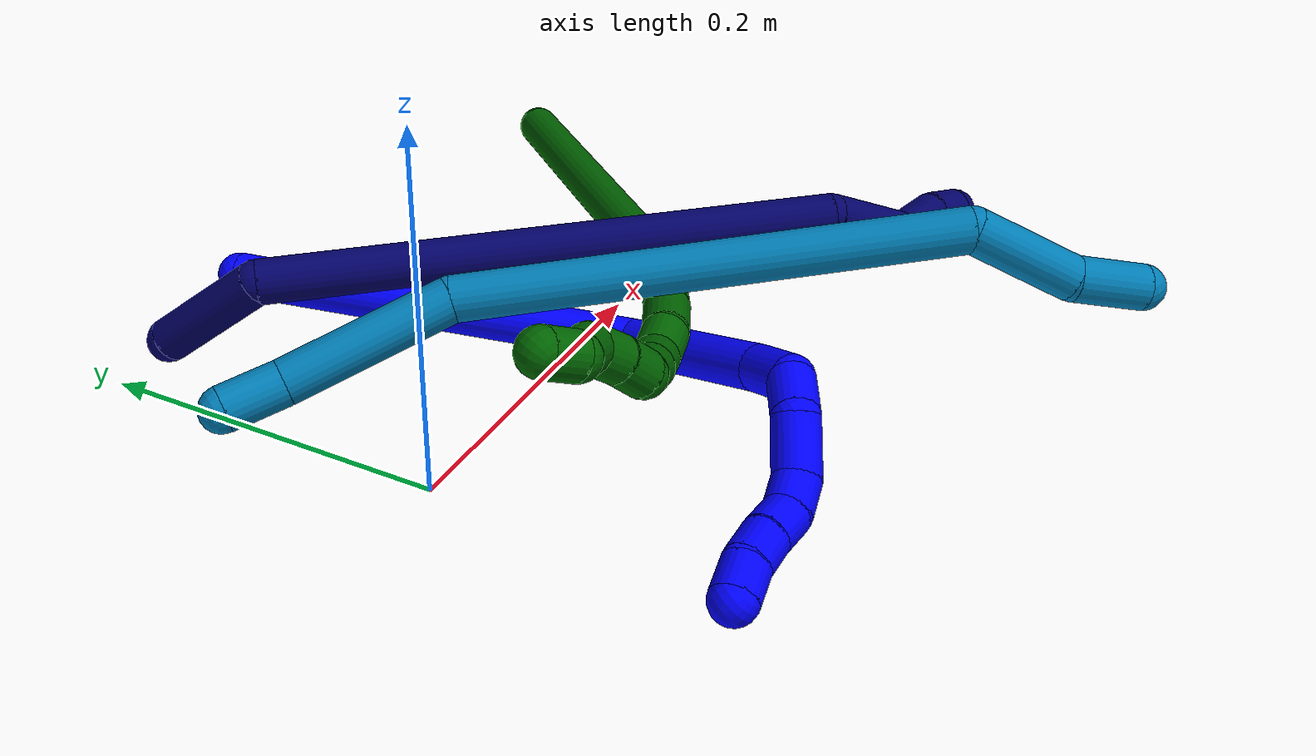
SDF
<sdf version="1.7">
 <world name="default">
  <model name="1">
   <static>0</static>
   <link name="1">
    <collision name="collision-cylinder-e_1_1_4">
     <pose>-0.005536 -0.092034 0.071286 0.91176 -0.047517 -0.023302</pose>
     <geometry><cylinder><radius>0.0125</radius><length>0.233088</length></cylinder></geometry>
     <surface>
      <friction><ode><mu>1.16</mu><mu2>1.16</mu2><slip1>0</slip1><slip2>0</slip2></ode></friction>
      <contact><ode><kp>1e+06</kp><kd>1</kd><max_vel>0</max_vel><min_depth>0.001</min_depth></ode></contact>
     </surface>
    </collision>
    <visual name="visual-cylinder-e_1_1_4">
     <pose>-0.005536 -0.092034 0.071286 0.91176 -0.047517 -0.023302</pose>
     <geometry><cylinder><radius>0.0125</radius><length>0.233088</length></cylinder></geometry>
     <material><ambient>0 0 1 1</ambient></material>
    </visual>
    <collision name="collision-cylinder-e_2_4_5">
     <pose>-0.043779 -0.209725 0.16983 0.755148 -0.718108 -0.295538</pose>
     <geometry><cylinder><radius>0.0125</radius><length>0.099422</length></cylinder></geometry>
     <surface>
      <friction><ode><mu>1.16</mu><mu2>1.16</mu2><slip1>0</slip1><slip2>0</slip2></ode></friction>
      <contact><ode><kp>1e+06</kp><kd>1</kd><max_vel>0</max_vel><min_depth>0.001</min_depth></ode></contact>
     </surface>
    </collision>
    <visual name="visual-cylinder-e_2_4_5">
     <pose>-0.043779 -0.209725 0.16983 0.755148 -0.718108 -0.295538</pose>
     <geometry><cylinder><radius>0.0125</radius><length>0.099422</length></cylinder></geometry>
     <material><ambient>0 0 1 1</ambient></material>
    </visual>
    <collision name="collision-cylinder-e_3_5_6">
     <pose>-0.088891 -0.241461 0.203828 0.733916 -0.939164 -0.38525</pose>
     <geometry><cylinder><radius>0.0125</radius><length>0.030738</length></cylinder></geometry>
     <surface>
      <friction><ode><mu>1.16</mu><mu2>1.16</mu2><slip1>0</slip1><slip2>0</slip2></ode></friction>
      <contact><ode><kp>1e+06</kp><kd>1</kd><max_vel>0</max_vel><min_depth>0.001</min_depth></ode></contact>
     </surface>
    </collision>
    <visual name="visual-cylinder-e_3_5_6">
     <pose>-0.088891 -0.241461 0.203828 0.733916 -0.939164 -0.38525</pose>
     <geometry><cylinder><radius>0.0125</radius><length>0.030738</length></cylinder></geometry>
     <material><ambient>0 0 1 1</ambient></material>
    </visual>
    <collision name="collision-cylinder-e_4_6_7">
     <pose>-0.111715 -0.253522 0.207202 2.08302 -0.988316 -1.48858</pose>
     <geometry><cylinder><radius>0.0125</radius><length>0.024956</length></cylinder></geometry>
     <surface>
      <friction><ode><mu>1.16</mu><mu2>1.16</mu2><slip1>0</slip1><slip2>0</slip2></ode></friction>
      <contact><ode><kp>1e+06</kp><kd>1</kd><max_vel>0</max_vel><min_depth>0.001</min_depth></ode></contact>
     </surface>
    </collision>
    <visual name="visual-cylinder-e_4_6_7">
     <pose>-0.111715 -0.253522 0.207202 2.08302 -0.988316 -1.48858</pose>
     <geometry><cylinder><radius>0.0125</radius><length>0.024956</length></cylinder></geometry>
     <material><ambient>0 0 1 1</ambient></material>
    </visual>
    <collision name="collision-cylinder-e_5_7_8">
     <pose>-0.128836 -0.26995 0.194718 2.28855 -0.450184 -0.93349</pose>
     <geometry><cylinder><radius>0.0125</radius><length>0.0308</length></cylinder></geometry>
     <surface>
      <friction><ode><mu>1.16</mu><mu2>1.16</mu2><slip1>0</slip1><slip2>0</slip2></ode></friction>
      <contact><ode><kp>1e+06</kp><kd>1</kd><max_vel>0</max_vel><min_depth>0.001</min_depth></ode></contact>
     </surface>
    </collision>
    <visual name="visual-cylinder-e_5_7_8">
     <pose>-0.128836 -0.26995 0.194718 2.28855 -0.450184 -0.93349</pose>
     <geometry><cylinder><radius>0.0125</radius><length>0.0308</length></cylinder></geometry>
     <material><ambient>0 0 1 1</ambient></material>
    </visual>
    <collision name="collision-cylinder-e_6_8_9">
     <pose>-0.143305 -0.283576 0.179953 2.62856 -0.875485 -2.11997</pose>
     <geometry><cylinder><radius>0.0125</radius><length>0.020232</length></cylinder></geometry>
     <surface>
      <friction><ode><mu>1.16</mu><mu2>1.16</mu2><slip1>0</slip1><slip2>0</slip2></ode></friction>
      <contact><ode><kp>1e+06</kp><kd>1</kd><max_vel>0</max_vel><min_depth>0.001</min_depth></ode></contact>
     </surface>
    </collision>
    <visual name="visual-cylinder-e_6_8_9">
     <pose>-0.143305 -0.283576 0.179953 2.62856 -0.875485 -2.11997</pose>
     <geometry><cylinder><radius>0.0125</radius><length>0.020232</length></cylinder></geometry>
     <material><ambient>0 0 1 1</ambient></material>
    </visual>
    <collision name="collision-cylinder-e_7_9_10">
     <pose>-0.159803 -0.285874 0.169155 -2.97201 -1.03134 2.84391</pose>
     <geometry><cylinder><radius>0.0125</radius><length>0.020349</length></cylinder></geometry>
     <surface>
      <friction><ode><mu>1.16</mu><mu2>1.16</mu2><slip1>0</slip1><slip2>0</slip2></ode></friction>
      <contact><ode><kp>1e+06</kp><kd>1</kd><max_vel>0</max_vel><min_depth>0.001</min_depth></ode></contact>
     </surface>
    </collision>
    <visual name="visual-cylinder-e_7_9_10">
     <pose>-0.159803 -0.285874 0.169155 -2.97201 -1.03134 2.84391</pose>
     <geometry><cylinder><radius>0.0125</radius><length>0.020349</length></cylinder></geometry>
     <material><ambient>0 0 1 1</ambient></material>
    </visual>
    <collision name="collision-cylinder-e_8_10_11">
     <pose>-0.177141 -0.285196 0.158676 3.10343 -1.01632 -3.0731</pose>
     <geometry><cylinder><radius>0.0125</radius><length>0.020252</length></cylinder></geometry>
     <surface>
      <friction><ode><mu>1.16</mu><mu2>1.16</mu2><slip1>0</slip1><slip2>0</slip2></ode></friction>
      <contact><ode><kp>1e+06</kp><kd>1</kd><max_vel>0</max_vel><min_depth>0.001</min_depth></ode></contact>
     </surface>
    </collision>
    <visual name="visual-cylinder-e_8_10_11">
     <pose>-0.177141 -0.285196 0.158676 3.10343 -1.01632 -3.0731</pose>
     <geometry><cylinder><radius>0.0125</radius><length>0.020252</length></cylinder></geometry>
     <material><ambient>0 0 1 1</ambient></material>
    </visual>
    <collision name="collision-cylinder-e_9_11_2">
     <pose>-0.193774 -0.287934 0.147797 2.71328 -0.920543 -2.31479</pose>
     <geometry><cylinder><radius>0.0125</radius><length>0.020163</length></cylinder></geometry>
     <surface>
      <friction><ode><mu>1.16</mu><mu2>1.16</mu2><slip1>0</slip1><slip2>0</slip2></ode></friction>
      <contact><ode><kp>1e+06</kp><kd>1</kd><max_vel>0</max_vel><min_depth>0.001</min_depth></ode></contact>
     </surface>
    </collision>
    <visual name="visual-cylinder-e_9_11_2">
     <pose>-0.193774 -0.287934 0.147797 2.71328 -0.920543 -2.31479</pose>
     <geometry><cylinder><radius>0.0125</radius><length>0.020163</length></cylinder></geometry>
     <material><ambient>0 0 1 1</ambient></material>
    </visual>
    <collision name="collision-sphere-2">
     <pose>-0.201799 -0.290469 0.142245 0 -0 0</pose>
     <geometry><sphere><radius>0.0125</radius></sphere></geometry>
     <surface>
      <friction><ode><mu>1.16</mu><mu2>1.16</mu2><slip1>0</slip1><slip2>0</slip2></ode></friction>
      <contact><ode><kp>1e+06</kp><kd>1</kd><max_vel>0</max_vel><min_depth>0.001</min_depth></ode></contact>
     </surface>
    </collision>
    <visual name="visual-sphere-2">
     <pose>-0.201799 -0.290469 0.142245 0 -0 0</pose>
     <geometry><sphere><radius>0.0125</radius></sphere></geometry>
     <material><ambient>0 0 1 1</ambient></material>
    </visual>
    <collision name="collision-sphere-11">
     <pose>-0.18575 -0.285399 0.153349 0 -0 0</pose>
     <geometry><sphere><radius>0.0125</radius></sphere></geometry>
     <surface>
      <friction><ode><mu>1.16</mu><mu2>1.16</mu2><slip1>0</slip1><slip2>0</slip2></ode></friction>
      <contact><ode><kp>1e+06</kp><kd>1</kd><max_vel>0</max_vel><min_depth>0.001</min_depth></ode></contact>
     </surface>
    </collision>
    <visual name="visual-sphere-11">
     <pose>-0.18575 -0.285399 0.153349 0 -0 0</pose>
     <geometry><sphere><radius>0.0125</radius></sphere></geometry>
     <material><ambient>0 0 1 1</ambient></material>
    </visual>
    <collision name="collision-sphere-10">
     <pose>-0.168532 -0.284992 0.164004 0 -0 0</pose>
     <geometry><sphere><radius>0.0125</radius></sphere></geometry>
     <surface>
      <friction><ode><mu>1.16</mu><mu2>1.16</mu2><slip1>0</slip1><slip2>0</slip2></ode></friction>
      <contact><ode><kp>1e+06</kp><kd>1</kd><max_vel>0</max_vel><min_depth>0.001</min_depth></ode></contact>
     </surface>
    </collision>
    <visual name="visual-sphere-10">
     <pose>-0.168532 -0.284992 0.164004 0 -0 0</pose>
     <geometry><sphere><radius>0.0125</radius></sphere></geometry>
     <material><ambient>0 0 1 1</ambient></material>
    </visual>
    <collision name="collision-sphere-9">
     <pose>-0.151073 -0.286757 0.174306 0 -0 0</pose>
     <geometry><sphere><radius>0.0125</radius></sphere></geometry>
     <surface>
      <friction><ode><mu>1.16</mu><mu2>1.16</mu2><slip1>0</slip1><slip2>0</slip2></ode></friction>
      <contact><ode><kp>1e+06</kp><kd>1</kd><max_vel>0</max_vel><min_depth>0.001</min_depth></ode></contact>
     </surface>
    </collision>
    <visual name="visual-sphere-9">
     <pose>-0.151073 -0.286757 0.174306 0 -0 0</pose>
     <geometry><sphere><radius>0.0125</radius></sphere></geometry>
     <material><ambient>0 0 1 1</ambient></material>
    </visual>
    <collision name="collision-sphere-4">
     <pose>-0.011071 -0.184067 0.142571 0 -0 0</pose>
     <geometry><sphere><radius>0.0125</radius></sphere></geometry>
     <surface>
      <friction><ode><mu>1.16</mu><mu2>1.16</mu2><slip1>0</slip1><slip2>0</slip2></ode></friction>
      <contact><ode><kp>1e+06</kp><kd>1</kd><max_vel>0</max_vel><min_depth>0.001</min_depth></ode></contact>
     </surface>
    </collision>
    <visual name="visual-sphere-4">
     <pose>-0.011071 -0.184067 0.142571 0 -0 0</pose>
     <geometry><sphere><radius>0.0125</radius></sphere></geometry>
     <material><ambient>0 0 1 1</ambient></material>
    </visual>
    <collision name="collision-sphere-1">
     <geometry><sphere><radius>0.0125</radius></sphere></geometry>
     <surface>
      <friction><ode><mu>1.16</mu><mu2>1.16</mu2><slip1>0</slip1><slip2>0</slip2></ode></friction>
      <contact><ode><kp>1e+06</kp><kd>1</kd><max_vel>0</max_vel><min_depth>0.001</min_depth></ode></contact>
     </surface>
    </collision>
    <visual name="visual-sphere-1">
     <geometry><sphere><radius>0.0125</radius></sphere></geometry>
     <material><ambient>0 0 1 1</ambient></material>
    </visual>
    <collision name="collision-sphere-8">
     <pose>-0.135538 -0.280395 0.185599 0 -0 0</pose>
     <geometry><sphere><radius>0.0125</radius></sphere></geometry>
     <surface>
      <friction><ode><mu>1.16</mu><mu2>1.16</mu2><slip1>0</slip1><slip2>0</slip2></ode></friction>
      <contact><ode><kp>1e+06</kp><kd>1</kd><max_vel>0</max_vel><min_depth>0.001</min_depth></ode></contact>
     </surface>
    </collision>
    <visual name="visual-sphere-8">
     <pose>-0.135538 -0.280395 0.185599 0 -0 0</pose>
     <geometry><sphere><radius>0.0125</radius></sphere></geometry>
     <material><ambient>0 0 1 1</ambient></material>
    </visual>
    <collision name="collision-sphere-5">
     <pose>-0.076487 -0.235382 0.197089 0 -0 0</pose>
     <geometry><sphere><radius>0.0125</radius></sphere></geometry>
     <surface>
      <friction><ode><mu>1.16</mu><mu2>1.16</mu2><slip1>0</slip1><slip2>0</slip2></ode></friction>
      <contact><ode><kp>1e+06</kp><kd>1</kd><max_vel>0</max_vel><min_depth>0.001</min_depth></ode></contact>
     </surface>
    </collision>
    <visual name="visual-sphere-5">
     <pose>-0.076487 -0.235382 0.197089 0 -0 0</pose>
     <geometry><sphere><radius>0.0125</radius></sphere></geometry>
     <material><ambient>0 0 1 1</ambient></material>
    </visual>
    <collision name="collision-sphere-6">
     <pose>-0.101294 -0.247539 0.210566 0 -0 0</pose>
     <geometry><sphere><radius>0.0125</radius></sphere></geometry>
     <surface>
      <friction><ode><mu>1.16</mu><mu2>1.16</mu2><slip1>0</slip1><slip2>0</slip2></ode></friction>
      <contact><ode><kp>1e+06</kp><kd>1</kd><max_vel>0</max_vel><min_depth>0.001</min_depth></ode></contact>
     </surface>
    </collision>
    <visual name="visual-sphere-6">
     <pose>-0.101294 -0.247539 0.210566 0 -0 0</pose>
     <geometry><sphere><radius>0.0125</radius></sphere></geometry>
     <material><ambient>0 0 1 1</ambient></material>
    </visual>
    <collision name="collision-sphere-7">
     <pose>-0.122135 -0.259505 0.203838 0 -0 0</pose>
     <geometry><sphere><radius>0.0125</radius></sphere></geometry>
     <surface>
      <friction><ode><mu>1.16</mu><mu2>1.16</mu2><slip1>0</slip1><slip2>0</slip2></ode></friction>
      <contact><ode><kp>1e+06</kp><kd>1</kd><max_vel>0</max_vel><min_depth>0.001</min_depth></ode></contact>
     </surface>
    </collision>
    <visual name="visual-sphere-7">
     <pose>-0.122135 -0.259505 0.203838 0 -0 0</pose>
     <geometry><sphere><radius>0.0125</radius></sphere></geometry>
     <material><ambient>0 0 1 1</ambient></material>
    </visual>
    <inertial>
     <pose>-0.057554 -0.175005 0.128421 0 -0 0</pose>
     <mass>0.5</mass>
     <inertia>
      <ixx>0.001061</ixx>
      <ixy>0</ixy>
      <ixz>0</ixz>
      <iyy>0.000661</iyy>
      <iyz>0</iyz>
      <izz>0.00102</izz>
     </inertia>
    </inertial>
   </link>
   <pose>0.095368 0.191956 0.0221 0.72177 0.353064 0.313822</pose>
  </model>
  <model name="6">
   <static>0</static>
   <link name="6">
    <collision name="collision-cylinder-e_1_1_4">
     <pose>-0.026155 -0.056845 -0.1145 2.68078 -0.201813 -0.814962</pose>
     <geometry><cylinder><radius>0.0125</radius><length>0.260965</length></cylinder></geometry>
     <surface>
      <friction><ode><mu>1.16</mu><mu2>1.16</mu2><slip1>0</slip1><slip2>0</slip2></ode></friction>
      <contact><ode><kp>1e+06</kp><kd>1</kd><max_vel>0</max_vel><min_depth>0.001</min_depth></ode></contact>
     </surface>
    </collision>
    <visual name="visual-cylinder-e_1_1_4">
     <pose>-0.026155 -0.056845 -0.1145 2.68078 -0.201813 -0.814962</pose>
     <geometry><cylinder><radius>0.0125</radius><length>0.260965</length></cylinder></geometry>
     <material><ambient>0 0.392157 0.003922 1</ambient></material>
    </visual>
    <collision name="collision-cylinder-e_2_4_5">
     <pose>-0.064836 -0.131205 -0.251942 2.48952 -0.409465 -1.10151</pose>
     <geometry><cylinder><radius>0.0125</radius><length>0.062928</length></cylinder></geometry>
     <surface>
      <friction><ode><mu>1.16</mu><mu2>1.16</mu2><slip1>0</slip1><slip2>0</slip2></ode></friction>
      <contact><ode><kp>1e+06</kp><kd>1</kd><max_vel>0</max_vel><min_depth>0.001</min_depth></ode></contact>
     </surface>
    </collision>
    <visual name="visual-cylinder-e_2_4_5">
     <pose>-0.064836 -0.131205 -0.251942 2.48952 -0.409465 -1.10151</pose>
     <geometry><cylinder><radius>0.0125</radius><length>0.062928</length></cylinder></geometry>
     <material><ambient>0 0.392157 0.003922 1</ambient></material>
    </visual>
    <collision name="collision-cylinder-e_3_5_6">
     <pose>-0.084633 -0.158066 -0.285838 2.43526 -0.467538 -1.14709</pose>
     <geometry><cylinder><radius>0.0125</radius><length>0.032263</length></cylinder></geometry>
     <surface>
      <friction><ode><mu>1.16</mu><mu2>1.16</mu2><slip1>0</slip1><slip2>0</slip2></ode></friction>
      <contact><ode><kp>1e+06</kp><kd>1</kd><max_vel>0</max_vel><min_depth>0.001</min_depth></ode></contact>
     </surface>
    </collision>
    <visual name="visual-cylinder-e_3_5_6">
     <pose>-0.084633 -0.158066 -0.285838 2.43526 -0.467538 -1.14709</pose>
     <geometry><cylinder><radius>0.0125</radius><length>0.032263</length></cylinder></geometry>
     <material><ambient>0 0.392157 0.003922 1</ambient></material>
    </visual>
    <collision name="collision-cylinder-e_4_6_7">
     <pose>-0.099257 -0.172902 -0.30298 2.41586 -0.726758 -1.57234</pose>
     <geometry><cylinder><radius>0.0125</radius><length>0.022136</length></cylinder></geometry>
     <surface>
      <friction><ode><mu>1.16</mu><mu2>1.16</mu2><slip1>0</slip1><slip2>0</slip2></ode></friction>
      <contact><ode><kp>1e+06</kp><kd>1</kd><max_vel>0</max_vel><min_depth>0.001</min_depth></ode></contact>
     </surface>
    </collision>
    <visual name="visual-cylinder-e_4_6_7">
     <pose>-0.099257 -0.172902 -0.30298 2.41586 -0.726758 -1.57234</pose>
     <geometry><cylinder><radius>0.0125</radius><length>0.022136</length></cylinder></geometry>
     <material><ambient>0 0.392157 0.003922 1</ambient></material>
    </visual>
    <collision name="collision-cylinder-e_5_7_8">
     <pose>-0.110698 -0.186279 -0.314811 2.19191 -0.398843 -0.749178</pose>
     <geometry><cylinder><radius>0.0125</radius><length>0.021049</length></cylinder></geometry>
     <surface>
      <friction><ode><mu>1.16</mu><mu2>1.16</mu2><slip1>0</slip1><slip2>0</slip2></ode></friction>
      <contact><ode><kp>1e+06</kp><kd>1</kd><max_vel>0</max_vel><min_depth>0.001</min_depth></ode></contact>
     </surface>
    </collision>
    <visual name="visual-cylinder-e_5_7_8">
     <pose>-0.110698 -0.186279 -0.314811 2.19191 -0.398843 -0.749178</pose>
     <geometry><cylinder><radius>0.0125</radius><length>0.021049</length></cylinder></geometry>
     <material><ambient>0 0.392157 0.003922 1</ambient></material>
    </visual>
    <collision name="collision-cylinder-e_6_8_9">
     <pose>-0.118277 -0.202414 -0.325424 2.11306 -0.34785 -0.603013</pose>
     <geometry><cylinder><radius>0.0125</radius><length>0.020485</length></cylinder></geometry>
     <surface>
      <friction><ode><mu>1.16</mu><mu2>1.16</mu2><slip1>0</slip1><slip2>0</slip2></ode></friction>
      <contact><ode><kp>1e+06</kp><kd>1</kd><max_vel>0</max_vel><min_depth>0.001</min_depth></ode></contact>
     </surface>
    </collision>
    <visual name="visual-cylinder-e_6_8_9">
     <pose>-0.118277 -0.202414 -0.325424 2.11306 -0.34785 -0.603013</pose>
     <geometry><cylinder><radius>0.0125</radius><length>0.020485</length></cylinder></geometry>
     <material><ambient>0 0.392157 0.003922 1</ambient></material>
    </visual>
    <collision name="collision-cylinder-e_7_9_10">
     <pose>-0.124204 -0.22024 -0.328672 1.393 -0.24524 -0.205409</pose>
     <geometry><cylinder><radius>0.0125</radius><length>0.020064</length></cylinder></geometry>
     <surface>
      <friction><ode><mu>1.16</mu><mu2>1.16</mu2><slip1>0</slip1><slip2>0</slip2></ode></friction>
      <contact><ode><kp>1e+06</kp><kd>1</kd><max_vel>0</max_vel><min_depth>0.001</min_depth></ode></contact>
     </surface>
    </collision>
    <visual name="visual-cylinder-e_7_9_10">
     <pose>-0.124204 -0.22024 -0.328672 1.393 -0.24524 -0.205409</pose>
     <geometry><cylinder><radius>0.0125</radius><length>0.020064</length></cylinder></geometry>
     <material><ambient>0 0.392157 0.003922 1</ambient></material>
    </visual>
    <collision name="collision-cylinder-e_8_10_11">
     <pose>-0.130103 -0.239052 -0.325037 1.36634 -0.352 -0.287499</pose>
     <geometry><cylinder><radius>0.0125</radius><length>0.020091</length></cylinder></geometry>
     <surface>
      <friction><ode><mu>1.16</mu><mu2>1.16</mu2><slip1>0</slip1><slip2>0</slip2></ode></friction>
      <contact><ode><kp>1e+06</kp><kd>1</kd><max_vel>0</max_vel><min_depth>0.001</min_depth></ode></contact>
     </surface>
    </collision>
    <visual name="visual-cylinder-e_8_10_11">
     <pose>-0.130103 -0.239052 -0.325037 1.36634 -0.352 -0.287499</pose>
     <geometry><cylinder><radius>0.0125</radius><length>0.020091</length></cylinder></geometry>
     <material><ambient>0 0.392157 0.003922 1</ambient></material>
    </visual>
    <collision name="collision-cylinder-e_9_11_12">
     <pose>-0.137851 -0.256113 -0.327639 2.09409 -0.442665 -0.74303</pose>
     <geometry><cylinder><radius>0.0125</radius><length>0.020003</length></cylinder></geometry>
     <surface>
      <friction><ode><mu>1.16</mu><mu2>1.16</mu2><slip1>0</slip1><slip2>0</slip2></ode></friction>
      <contact><ode><kp>1e+06</kp><kd>1</kd><max_vel>0</max_vel><min_depth>0.001</min_depth></ode></contact>
     </surface>
    </collision>
    <visual name="visual-cylinder-e_9_11_12">
     <pose>-0.137851 -0.256113 -0.327639 2.09409 -0.442665 -0.74303</pose>
     <geometry><cylinder><radius>0.0125</radius><length>0.020003</length></cylinder></geometry>
     <material><ambient>0 0.392157 0.003922 1</ambient></material>
    </visual>
    <collision name="collision-cylinder-e_10_12_2">
     <pose>-0.147526 -0.272065 -0.329899 1.29999 -0.568865 -0.437392</pose>
     <geometry><cylinder><radius>0.0125</radius><length>0.020016</length></cylinder></geometry>
     <surface>
      <friction><ode><mu>1.16</mu><mu2>1.16</mu2><slip1>0</slip1><slip2>0</slip2></ode></friction>
      <contact><ode><kp>1e+06</kp><kd>1</kd><max_vel>0</max_vel><min_depth>0.001</min_depth></ode></contact>
     </surface>
    </collision>
    <visual name="visual-cylinder-e_10_12_2">
     <pose>-0.147526 -0.272065 -0.329899 1.29999 -0.568865 -0.437392</pose>
     <geometry><cylinder><radius>0.0125</radius><length>0.020016</length></cylinder></geometry>
     <material><ambient>0 0.392157 0.003922 1</ambient></material>
    </visual>
    <collision name="collision-sphere-2">
     <pose>-0.152917 -0.28019 -0.327644 0 -0 0</pose>
     <geometry><sphere><radius>0.0125</radius></sphere></geometry>
     <surface>
      <friction><ode><mu>1.16</mu><mu2>1.16</mu2><slip1>0</slip1><slip2>0</slip2></ode></friction>
      <contact><ode><kp>1e+06</kp><kd>1</kd><max_vel>0</max_vel><min_depth>0.001</min_depth></ode></contact>
     </surface>
    </collision>
    <visual name="visual-sphere-2">
     <pose>-0.152917 -0.28019 -0.327644 0 -0 0</pose>
     <geometry><sphere><radius>0.0125</radius></sphere></geometry>
     <material><ambient>0 0.392157 0.003922 1</ambient></material>
    </visual>
    <collision name="collision-sphere-12">
     <pose>-0.142135 -0.263941 -0.332155 0 -0 0</pose>
     <geometry><sphere><radius>0.0125</radius></sphere></geometry>
     <surface>
      <friction><ode><mu>1.16</mu><mu2>1.16</mu2><slip1>0</slip1><slip2>0</slip2></ode></friction>
      <contact><ode><kp>1e+06</kp><kd>1</kd><max_vel>0</max_vel><min_depth>0.001</min_depth></ode></contact>
     </surface>
    </collision>
    <visual name="visual-sphere-12">
     <pose>-0.142135 -0.263941 -0.332155 0 -0 0</pose>
     <geometry><sphere><radius>0.0125</radius></sphere></geometry>
     <material><ambient>0 0.392157 0.003922 1</ambient></material>
    </visual>
    <collision name="collision-sphere-11">
     <pose>-0.133567 -0.248285 -0.323122 0 -0 0</pose>
     <geometry><sphere><radius>0.0125</radius></sphere></geometry>
     <surface>
      <friction><ode><mu>1.16</mu><mu2>1.16</mu2><slip1>0</slip1><slip2>0</slip2></ode></friction>
      <contact><ode><kp>1e+06</kp><kd>1</kd><max_vel>0</max_vel><min_depth>0.001</min_depth></ode></contact>
     </surface>
    </collision>
    <visual name="visual-sphere-11">
     <pose>-0.133567 -0.248285 -0.323122 0 -0 0</pose>
     <geometry><sphere><radius>0.0125</radius></sphere></geometry>
     <material><ambient>0 0.392157 0.003922 1</ambient></material>
    </visual>
    <collision name="collision-sphere-10">
     <pose>-0.12664 -0.229819 -0.326951 0 -0 0</pose>
     <geometry><sphere><radius>0.0125</radius></sphere></geometry>
     <surface>
      <friction><ode><mu>1.16</mu><mu2>1.16</mu2><slip1>0</slip1><slip2>0</slip2></ode></friction>
      <contact><ode><kp>1e+06</kp><kd>1</kd><max_vel>0</max_vel><min_depth>0.001</min_depth></ode></contact>
     </surface>
    </collision>
    <visual name="visual-sphere-10">
     <pose>-0.12664 -0.229819 -0.326951 0 -0 0</pose>
     <geometry><sphere><radius>0.0125</radius></sphere></geometry>
     <material><ambient>0 0.392157 0.003922 1</ambient></material>
    </visual>
    <collision name="collision-sphere-9">
     <pose>-0.121768 -0.210662 -0.330394 0 -0 0</pose>
     <geometry><sphere><radius>0.0125</radius></sphere></geometry>
     <surface>
      <friction><ode><mu>1.16</mu><mu2>1.16</mu2><slip1>0</slip1><slip2>0</slip2></ode></friction>
      <contact><ode><kp>1e+06</kp><kd>1</kd><max_vel>0</max_vel><min_depth>0.001</min_depth></ode></contact>
     </surface>
    </collision>
    <visual name="visual-sphere-9">
     <pose>-0.121768 -0.210662 -0.330394 0 -0 0</pose>
     <geometry><sphere><radius>0.0125</radius></sphere></geometry>
     <material><ambient>0 0.392157 0.003922 1</ambient></material>
    </visual>
    <collision name="collision-sphere-4">
     <pose>-0.052309 -0.11369 -0.229 0 -0 0</pose>
     <geometry><sphere><radius>0.0125</radius></sphere></geometry>
     <surface>
      <friction><ode><mu>1.16</mu><mu2>1.16</mu2><slip1>0</slip1><slip2>0</slip2></ode></friction>
      <contact><ode><kp>1e+06</kp><kd>1</kd><max_vel>0</max_vel><min_depth>0.001</min_depth></ode></contact>
     </surface>
    </collision>
    <visual name="visual-sphere-4">
     <pose>-0.052309 -0.11369 -0.229 0 -0 0</pose>
     <geometry><sphere><radius>0.0125</radius></sphere></geometry>
     <material><ambient>0 0.392157 0.003922 1</ambient></material>
    </visual>
    <collision name="collision-sphere-1">
     <geometry><sphere><radius>0.0125</radius></sphere></geometry>
     <surface>
      <friction><ode><mu>1.16</mu><mu2>1.16</mu2><slip1>0</slip1><slip2>0</slip2></ode></friction>
      <contact><ode><kp>1e+06</kp><kd>1</kd><max_vel>0</max_vel><min_depth>0.001</min_depth></ode></contact>
     </surface>
    </collision>
    <visual name="visual-sphere-1">
     <geometry><sphere><radius>0.0125</radius></sphere></geometry>
     <material><ambient>0 0.392157 0.003922 1</ambient></material>
    </visual>
    <collision name="collision-sphere-8">
     <pose>-0.114786 -0.194166 -0.320455 0 -0 0</pose>
     <geometry><sphere><radius>0.0125</radius></sphere></geometry>
     <surface>
      <friction><ode><mu>1.16</mu><mu2>1.16</mu2><slip1>0</slip1><slip2>0</slip2></ode></friction>
      <contact><ode><kp>1e+06</kp><kd>1</kd><max_vel>0</max_vel><min_depth>0.001</min_depth></ode></contact>
     </surface>
    </collision>
    <visual name="visual-sphere-8">
     <pose>-0.114786 -0.194166 -0.320455 0 -0 0</pose>
     <geometry><sphere><radius>0.0125</radius></sphere></geometry>
     <material><ambient>0 0.392157 0.003922 1</ambient></material>
    </visual>
    <collision name="collision-sphere-5">
     <pose>-0.077362 -0.14872 -0.274883 0 -0 0</pose>
     <geometry><sphere><radius>0.0125</radius></sphere></geometry>
     <surface>
      <friction><ode><mu>1.16</mu><mu2>1.16</mu2><slip1>0</slip1><slip2>0</slip2></ode></friction>
      <contact><ode><kp>1e+06</kp><kd>1</kd><max_vel>0</max_vel><min_depth>0.001</min_depth></ode></contact>
     </surface>
    </collision>
    <visual name="visual-sphere-5">
     <pose>-0.077362 -0.14872 -0.274883 0 -0 0</pose>
     <geometry><sphere><radius>0.0125</radius></sphere></geometry>
     <material><ambient>0 0.392157 0.003922 1</ambient></material>
    </visual>
    <collision name="collision-sphere-6">
     <pose>-0.091903 -0.167413 -0.296793 0 -0 0</pose>
     <geometry><sphere><radius>0.0125</radius></sphere></geometry>
     <surface>
      <friction><ode><mu>1.16</mu><mu2>1.16</mu2><slip1>0</slip1><slip2>0</slip2></ode></friction>
      <contact><ode><kp>1e+06</kp><kd>1</kd><max_vel>0</max_vel><min_depth>0.001</min_depth></ode></contact>
     </surface>
    </collision>
    <visual name="visual-sphere-6">
     <pose>-0.091903 -0.167413 -0.296793 0 -0 0</pose>
     <geometry><sphere><radius>0.0125</radius></sphere></geometry>
     <material><ambient>0 0.392157 0.003922 1</ambient></material>
    </visual>
    <collision name="collision-sphere-7">
     <pose>-0.106611 -0.178392 -0.309167 0 -0 0</pose>
     <geometry><sphere><radius>0.0125</radius></sphere></geometry>
     <surface>
      <friction><ode><mu>1.16</mu><mu2>1.16</mu2><slip1>0</slip1><slip2>0</slip2></ode></friction>
      <contact><ode><kp>1e+06</kp><kd>1</kd><max_vel>0</max_vel><min_depth>0.001</min_depth></ode></contact>
     </surface>
    </collision>
    <visual name="visual-sphere-7">
     <pose>-0.106611 -0.178392 -0.309167 0 -0 0</pose>
     <geometry><sphere><radius>0.0125</radius></sphere></geometry>
     <material><ambient>0 0.392157 0.003922 1</ambient></material>
    </visual>
    <inertial>
     <pose>-0.062805 -0.119752 -0.202476 0 -0 0</pose>
     <mass>0.5</mass>
     <inertia>
      <ixx>-8.2e-05</ixx>
      <ixy>0</ixy>
      <ixz>0</ixz>
      <iyy>-0.001934</iyy>
      <iyz>0</iyz>
      <izz>0.000962</izz>
     </inertia>
    </inertial>
   </link>
   <pose>0.366046 0.149506 0.012648 -1.40072 -0.571605 -0.449323</pose>
  </model>
  <model name="7">
   <static>0</static>
   <link name="7">
    <collision name="collision-cylinder-e_1_1_4">
     <pose>0.011375 -0.030181 -0.013882 2.0019 0.3299 0.508349</pose>
     <geometry><cylinder><radius>0.0125</radius><length>0.070228</length></cylinder></geometry>
     <surface>
      <friction><ode><mu>1.16</mu><mu2>1.16</mu2><slip1>0</slip1><slip2>0</slip2></ode></friction>
      <contact><ode><kp>1e+06</kp><kd>1</kd><max_vel>0</max_vel><min_depth>0.001</min_depth></ode></contact>
     </surface>
    </collision>
    <visual name="visual-cylinder-e_1_1_4">
     <pose>0.011375 -0.030181 -0.013882 2.0019 0.3299 0.508349</pose>
     <geometry><cylinder><radius>0.0125</radius><length>0.070228</length></cylinder></geometry>
     <material><ambient>0.003922 0 0.403922 1</ambient></material>
    </visual>
    <collision name="collision-cylinder-e_2_4_5">
     <pose>0.140945 -0.165579 -0.000804 1.31996 0.827605 0.656948</pose>
     <geometry><cylinder><radius>0.0125</radius><length>0.321045</length></cylinder></geometry>
     <surface>
      <friction><ode><mu>1.16</mu><mu2>1.16</mu2><slip1>0</slip1><slip2>0</slip2></ode></friction>
      <contact><ode><kp>1e+06</kp><kd>1</kd><max_vel>0</max_vel><min_depth>0.001</min_depth></ode></contact>
     </surface>
    </collision>
    <visual name="visual-cylinder-e_2_4_5">
     <pose>0.140945 -0.165579 -0.000804 1.31996 0.827605 0.656948</pose>
     <geometry><cylinder><radius>0.0125</radius><length>0.321045</length></cylinder></geometry>
     <material><ambient>0.003922 0 0.403922 1</ambient></material>
    </visual>
    <collision name="collision-cylinder-e_3_5_6">
     <pose>0.281404 -0.278923 0.04039 0.518792 0.93617 0.266733</pose>
     <geometry><cylinder><radius>0.0125</radius><length>0.055294</length></cylinder></geometry>
     <surface>
      <friction><ode><mu>1.16</mu><mu2>1.16</mu2><slip1>0</slip1><slip2>0</slip2></ode></friction>
      <contact><ode><kp>1e+06</kp><kd>1</kd><max_vel>0</max_vel><min_depth>0.001</min_depth></ode></contact>
     </surface>
    </collision>
    <visual name="visual-cylinder-e_3_5_6">
     <pose>0.281404 -0.278923 0.04039 0.518792 0.93617 0.266733</pose>
     <geometry><cylinder><radius>0.0125</radius><length>0.055294</length></cylinder></geometry>
     <material><ambient>0.003922 0 0.403922 1</ambient></material>
    </visual>
    <collision name="collision-cylinder-e_4_6_7">
     <pose>0.309386 -0.297187 0.066509 0.706212 0.350897 0.130482</pose>
     <geometry><cylinder><radius>0.0125</radius><length>0.033267</length></cylinder></geometry>
     <surface>
      <friction><ode><mu>1.16</mu><mu2>1.16</mu2><slip1>0</slip1><slip2>0</slip2></ode></friction>
      <contact><ode><kp>1e+06</kp><kd>1</kd><max_vel>0</max_vel><min_depth>0.001</min_depth></ode></contact>
     </surface>
    </collision>
    <visual name="visual-cylinder-e_4_6_7">
     <pose>0.309386 -0.297187 0.066509 0.706212 0.350897 0.130482</pose>
     <geometry><cylinder><radius>0.0125</radius><length>0.033267</length></cylinder></geometry>
     <material><ambient>0.003922 0 0.403922 1</ambient></material>
    </visual>
    <collision name="collision-cylinder-e_5_7_2">
     <pose>0.32132 -0.312429 0.084473 0.698465 0.66433 0.249921</pose>
     <geometry><cylinder><radius>0.0125</radius><length>0.020166</length></cylinder></geometry>
     <surface>
      <friction><ode><mu>1.16</mu><mu2>1.16</mu2><slip1>0</slip1><slip2>0</slip2></ode></friction>
      <contact><ode><kp>1e+06</kp><kd>1</kd><max_vel>0</max_vel><min_depth>0.001</min_depth></ode></contact>
     </surface>
    </collision>
    <visual name="visual-cylinder-e_5_7_2">
     <pose>0.32132 -0.312429 0.084473 0.698465 0.66433 0.249921</pose>
     <geometry><cylinder><radius>0.0125</radius><length>0.020166</length></cylinder></geometry>
     <material><ambient>0.003922 0 0.403922 1</ambient></material>
    </visual>
    <collision name="collision-sphere-2">
     <pose>0.327536 -0.317534 0.090552 0 -0 0</pose>
     <geometry><sphere><radius>0.0125</radius></sphere></geometry>
     <surface>
      <friction><ode><mu>1.16</mu><mu2>1.16</mu2><slip1>0</slip1><slip2>0</slip2></ode></friction>
      <contact><ode><kp>1e+06</kp><kd>1</kd><max_vel>0</max_vel><min_depth>0.001</min_depth></ode></contact>
     </surface>
    </collision>
    <visual name="visual-sphere-2">
     <pose>0.327536 -0.317534 0.090552 0 -0 0</pose>
     <geometry><sphere><radius>0.0125</radius></sphere></geometry>
     <material><ambient>0.003922 0 0.403922 1</ambient></material>
    </visual>
    <collision name="collision-sphere-7">
     <pose>0.315103 -0.307324 0.078393 0 -0 0</pose>
     <geometry><sphere><radius>0.0125</radius></sphere></geometry>
     <surface>
      <friction><ode><mu>1.16</mu><mu2>1.16</mu2><slip1>0</slip1><slip2>0</slip2></ode></friction>
      <contact><ode><kp>1e+06</kp><kd>1</kd><max_vel>0</max_vel><min_depth>0.001</min_depth></ode></contact>
     </surface>
    </collision>
    <visual name="visual-sphere-7">
     <pose>0.315103 -0.307324 0.078393 0 -0 0</pose>
     <geometry><sphere><radius>0.0125</radius></sphere></geometry>
     <material><ambient>0.003922 0 0.403922 1</ambient></material>
    </visual>
    <collision name="collision-sphere-6">
     <pose>0.303668 -0.287051 0.054625 0 -0 0</pose>
     <geometry><sphere><radius>0.0125</radius></sphere></geometry>
     <surface>
      <friction><ode><mu>1.16</mu><mu2>1.16</mu2><slip1>0</slip1><slip2>0</slip2></ode></friction>
      <contact><ode><kp>1e+06</kp><kd>1</kd><max_vel>0</max_vel><min_depth>0.001</min_depth></ode></contact>
     </surface>
    </collision>
    <visual name="visual-sphere-6">
     <pose>0.303668 -0.287051 0.054625 0 -0 0</pose>
     <geometry><sphere><radius>0.0125</radius></sphere></geometry>
     <material><ambient>0.003922 0 0.403922 1</ambient></material>
    </visual>
    <collision name="collision-sphere-5">
     <pose>0.25914 -0.270796 0.026156 0 -0 0</pose>
     <geometry><sphere><radius>0.0125</radius></sphere></geometry>
     <surface>
      <friction><ode><mu>1.16</mu><mu2>1.16</mu2><slip1>0</slip1><slip2>0</slip2></ode></friction>
      <contact><ode><kp>1e+06</kp><kd>1</kd><max_vel>0</max_vel><min_depth>0.001</min_depth></ode></contact>
     </surface>
    </collision>
    <visual name="visual-sphere-5">
     <pose>0.25914 -0.270796 0.026156 0 -0 0</pose>
     <geometry><sphere><radius>0.0125</radius></sphere></geometry>
     <material><ambient>0.003922 0 0.403922 1</ambient></material>
    </visual>
    <collision name="collision-sphere-1">
     <geometry><sphere><radius>0.0125</radius></sphere></geometry>
     <surface>
      <friction><ode><mu>1.16</mu><mu2>1.16</mu2><slip1>0</slip1><slip2>0</slip2></ode></friction>
      <contact><ode><kp>1e+06</kp><kd>1</kd><max_vel>0</max_vel><min_depth>0.001</min_depth></ode></contact>
     </surface>
    </collision>
    <visual name="visual-sphere-1">
     <geometry><sphere><radius>0.0125</radius></sphere></geometry>
     <material><ambient>0.003922 0 0.403922 1</ambient></material>
    </visual>
    <collision name="collision-sphere-4">
     <pose>0.02275 -0.060362 -0.027764 0 -0 0</pose>
     <geometry><sphere><radius>0.0125</radius></sphere></geometry>
     <surface>
      <friction><ode><mu>1.16</mu><mu2>1.16</mu2><slip1>0</slip1><slip2>0</slip2></ode></friction>
      <contact><ode><kp>1e+06</kp><kd>1</kd><max_vel>0</max_vel><min_depth>0.001</min_depth></ode></contact>
     </surface>
    </collision>
    <visual name="visual-sphere-4">
     <pose>0.02275 -0.060362 -0.027764 0 -0 0</pose>
     <geometry><sphere><radius>0.0125</radius></sphere></geometry>
     <material><ambient>0.003922 0 0.403922 1</ambient></material>
    </visual>
    <inertial>
     <pose>0.156761 -0.173775 0.009833 0 -0 0</pose>
     <mass>0.5</mass>
     <inertia>
      <ixx>0.002713</ixx>
      <ixy>0</ixy>
      <ixz>0</ixz>
      <iyy>0.002902</iyy>
      <iyz>0</iyz>
      <izz>-0.000207</izz>
     </inertia>
    </inertial>
   </link>
   <pose>0.031996 0.191635 0.013167 -2.06267 0.575297 -1.35267</pose>
  </model>
  <model name="9">
   <static>0</static>
   <link name="9">
    <collision name="collision-cylinder-e_1_1_4">
     <pose>0.001004 -0.002249 0.016383 0.136437 0.060632 0.004144</pose>
     <geometry><cylinder><radius>0.0125</radius><length>0.033135</length></cylinder></geometry>
     <surface>
      <friction><ode><mu>1.16</mu><mu2>1.16</mu2><slip1>0</slip1><slip2>0</slip2></ode></friction>
      <contact><ode><kp>1e+06</kp><kd>1</kd><max_vel>0</max_vel><min_depth>0.001</min_depth></ode></contact>
     </surface>
    </collision>
    <visual name="visual-cylinder-e_1_1_4">
     <pose>0.001004 -0.002249 0.016383 0.136437 0.060632 0.004144</pose>
     <geometry><cylinder><radius>0.0125</radius><length>0.033135</length></cylinder></geometry>
     <material><ambient>0 0.490196 0.709804 1</ambient></material>
    </visual>
    <collision name="collision-cylinder-e_2_4_5">
     <pose>-0.002354 -0.012061 0.079104 0.161773 -0.092632 -0.007514</pose>
     <geometry><cylinder><radius>0.0125</radius><length>0.094306</length></cylinder></geometry>
     <surface>
      <friction><ode><mu>1.16</mu><mu2>1.16</mu2><slip1>0</slip1><slip2>0</slip2></ode></friction>
      <contact><ode><kp>1e+06</kp><kd>1</kd><max_vel>0</max_vel><min_depth>0.001</min_depth></ode></contact>
     </surface>
    </collision>
    <visual name="visual-cylinder-e_2_4_5">
     <pose>-0.002354 -0.012061 0.079104 0.161773 -0.092632 -0.007514</pose>
     <geometry><cylinder><radius>0.0125</radius><length>0.094306</length></cylinder></geometry>
     <material><ambient>0 0.490196 0.709804 1</ambient></material>
    </visual>
    <collision name="collision-cylinder-e_3_5_6">
     <pose>-0.011611 -0.085897 0.243511 0.511485 -0.036141 -0.009451</pose>
     <geometry><cylinder><radius>0.0125</radius><length>0.270972</length></cylinder></geometry>
     <surface>
      <friction><ode><mu>1.16</mu><mu2>1.16</mu2><slip1>0</slip1><slip2>0</slip2></ode></friction>
      <contact><ode><kp>1e+06</kp><kd>1</kd><max_vel>0</max_vel><min_depth>0.001</min_depth></ode></contact>
     </surface>
    </collision>
    <visual name="visual-cylinder-e_3_5_6">
     <pose>-0.011611 -0.085897 0.243511 0.511485 -0.036141 -0.009451</pose>
     <geometry><cylinder><radius>0.0125</radius><length>0.270972</length></cylinder></geometry>
     <material><ambient>0 0.490196 0.709804 1</ambient></material>
    </visual>
    <collision name="collision-cylinder-e_4_6_7">
     <pose>-0.00505 -0.17471 0.378492 0.927096 0.386141 0.194839</pose>
     <geometry><cylinder><radius>0.0125</radius><length>0.060838</length></cylinder></geometry>
     <surface>
      <friction><ode><mu>1.16</mu><mu2>1.16</mu2><slip1>0</slip1><slip2>0</slip2></ode></friction>
      <contact><ode><kp>1e+06</kp><kd>1</kd><max_vel>0</max_vel><min_depth>0.001</min_depth></ode></contact>
     </surface>
    </collision>
    <visual name="visual-cylinder-e_4_6_7">
     <pose>-0.00505 -0.17471 0.378492 0.927096 0.386141 0.194839</pose>
     <geometry><cylinder><radius>0.0125</radius><length>0.060838</length></cylinder></geometry>
     <material><ambient>0 0.490196 0.709804 1</ambient></material>
    </visual>
    <collision name="collision-cylinder-e_5_7_2">
     <pose>0.01204 -0.208492 0.411436 0.611529 0.280164 0.088962</pose>
     <geometry><cylinder><radius>0.0125</radius><length>0.040749</length></cylinder></geometry>
     <surface>
      <friction><ode><mu>1.16</mu><mu2>1.16</mu2><slip1>0</slip1><slip2>0</slip2></ode></friction>
      <contact><ode><kp>1e+06</kp><kd>1</kd><max_vel>0</max_vel><min_depth>0.001</min_depth></ode></contact>
     </surface>
    </collision>
    <visual name="visual-cylinder-e_5_7_2">
     <pose>0.01204 -0.208492 0.411436 0.611529 0.280164 0.088962</pose>
     <geometry><cylinder><radius>0.0125</radius><length>0.040749</length></cylinder></geometry>
     <material><ambient>0 0.490196 0.709804 1</ambient></material>
    </visual>
    <collision name="collision-sphere-2">
     <pose>0.017674 -0.219733 0.427468 0 -0 0</pose>
     <geometry><sphere><radius>0.0125</radius></sphere></geometry>
     <surface>
      <friction><ode><mu>1.16</mu><mu2>1.16</mu2><slip1>0</slip1><slip2>0</slip2></ode></friction>
      <contact><ode><kp>1e+06</kp><kd>1</kd><max_vel>0</max_vel><min_depth>0.001</min_depth></ode></contact>
     </surface>
    </collision>
    <visual name="visual-sphere-2">
     <pose>0.017674 -0.219733 0.427468 0 -0 0</pose>
     <geometry><sphere><radius>0.0125</radius></sphere></geometry>
     <material><ambient>0 0.490196 0.709804 1</ambient></material>
    </visual>
    <collision name="collision-sphere-7">
     <pose>0.006406 -0.19725 0.395404 0 -0 0</pose>
     <geometry><sphere><radius>0.0125</radius></sphere></geometry>
     <surface>
      <friction><ode><mu>1.16</mu><mu2>1.16</mu2><slip1>0</slip1><slip2>0</slip2></ode></friction>
      <contact><ode><kp>1e+06</kp><kd>1</kd><max_vel>0</max_vel><min_depth>0.001</min_depth></ode></contact>
     </surface>
    </collision>
    <visual name="visual-sphere-7">
     <pose>0.006406 -0.19725 0.395404 0 -0 0</pose>
     <geometry><sphere><radius>0.0125</radius></sphere></geometry>
     <material><ambient>0 0.490196 0.709804 1</ambient></material>
    </visual>
    <collision name="collision-sphere-6">
     <pose>-0.016506 -0.15217 0.36158 0 -0 0</pose>
     <geometry><sphere><radius>0.0125</radius></sphere></geometry>
     <surface>
      <friction><ode><mu>1.16</mu><mu2>1.16</mu2><slip1>0</slip1><slip2>0</slip2></ode></friction>
      <contact><ode><kp>1e+06</kp><kd>1</kd><max_vel>0</max_vel><min_depth>0.001</min_depth></ode></contact>
     </surface>
    </collision>
    <visual name="visual-sphere-6">
     <pose>-0.016506 -0.15217 0.36158 0 -0 0</pose>
     <geometry><sphere><radius>0.0125</radius></sphere></geometry>
     <material><ambient>0 0.490196 0.709804 1</ambient></material>
    </visual>
    <collision name="collision-sphere-5">
     <pose>-0.006715 -0.019623 0.125442 0 -0 0</pose>
     <geometry><sphere><radius>0.0125</radius></sphere></geometry>
     <surface>
      <friction><ode><mu>1.16</mu><mu2>1.16</mu2><slip1>0</slip1><slip2>0</slip2></ode></friction>
      <contact><ode><kp>1e+06</kp><kd>1</kd><max_vel>0</max_vel><min_depth>0.001</min_depth></ode></contact>
     </surface>
    </collision>
    <visual name="visual-sphere-5">
     <pose>-0.006715 -0.019623 0.125442 0 -0 0</pose>
     <geometry><sphere><radius>0.0125</radius></sphere></geometry>
     <material><ambient>0 0.490196 0.709804 1</ambient></material>
    </visual>
    <collision name="collision-sphere-1">
     <geometry><sphere><radius>0.0125</radius></sphere></geometry>
     <surface>
      <friction><ode><mu>1.16</mu><mu2>1.16</mu2><slip1>0</slip1><slip2>0</slip2></ode></friction>
      <contact><ode><kp>1e+06</kp><kd>1</kd><max_vel>0</max_vel><min_depth>0.001</min_depth></ode></contact>
     </surface>
    </collision>
    <visual name="visual-sphere-1">
     <geometry><sphere><radius>0.0125</radius></sphere></geometry>
     <material><ambient>0 0.490196 0.709804 1</ambient></material>
    </visual>
    <collision name="collision-sphere-4">
     <pose>0.002008 -0.004499 0.032767 0 -0 0</pose>
     <geometry><sphere><radius>0.0125</radius></sphere></geometry>
     <surface>
      <friction><ode><mu>1.16</mu><mu2>1.16</mu2><slip1>0</slip1><slip2>0</slip2></ode></friction>
      <contact><ode><kp>1e+06</kp><kd>1</kd><max_vel>0</max_vel><min_depth>0.001</min_depth></ode></contact>
     </surface>
    </collision>
    <visual name="visual-sphere-4">
     <pose>0.002008 -0.004499 0.032767 0 -0 0</pose>
     <geometry><sphere><radius>0.0125</radius></sphere></geometry>
     <material><ambient>0 0.490196 0.709804 1</ambient></material>
    </visual>
    <inertial>
     <pose>-0.006303 -0.087225 0.22756 0 -0 0</pose>
     <mass>0.5</mass>
     <inertia>
      <ixx>0.001761</ixx>
      <ixy>0</ixy>
      <ixz>0</ixz>
      <iyy>0.001523</iyy>
      <iyz>0</iyz>
      <izz>0.000939</izz>
     </inertia>
    </inertial>
   </link>
   <pose>-0.027909 0.103957 0.031823 0.907354 1.0604 0.457153</pose>
  </model>
 </world>
</sdf>
